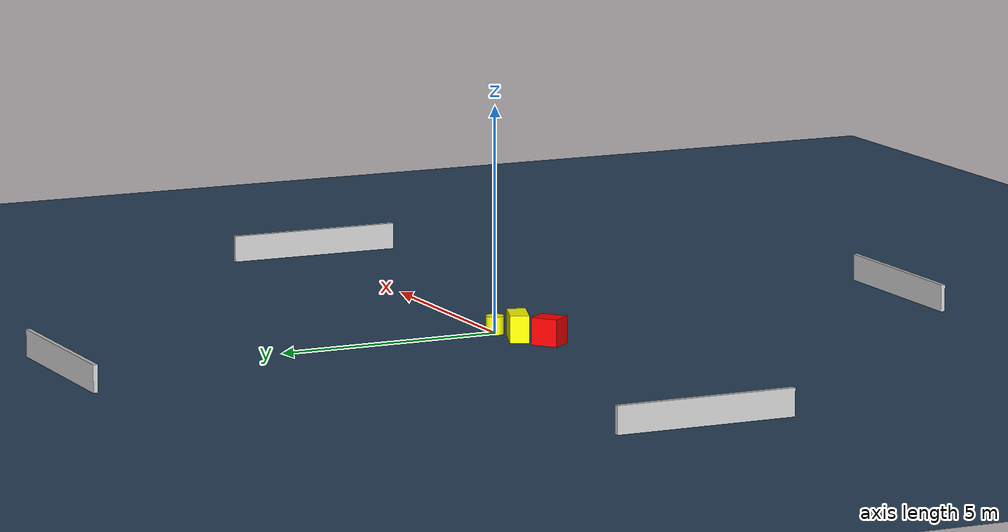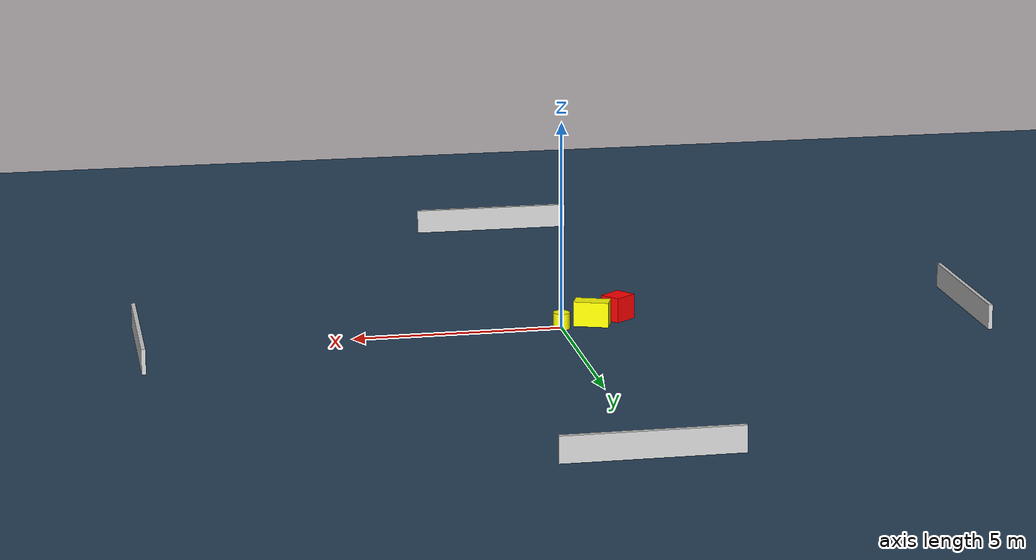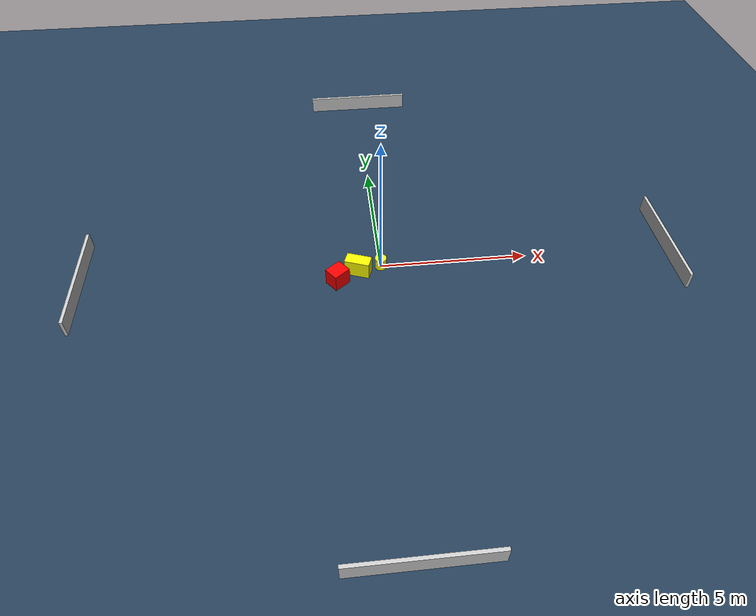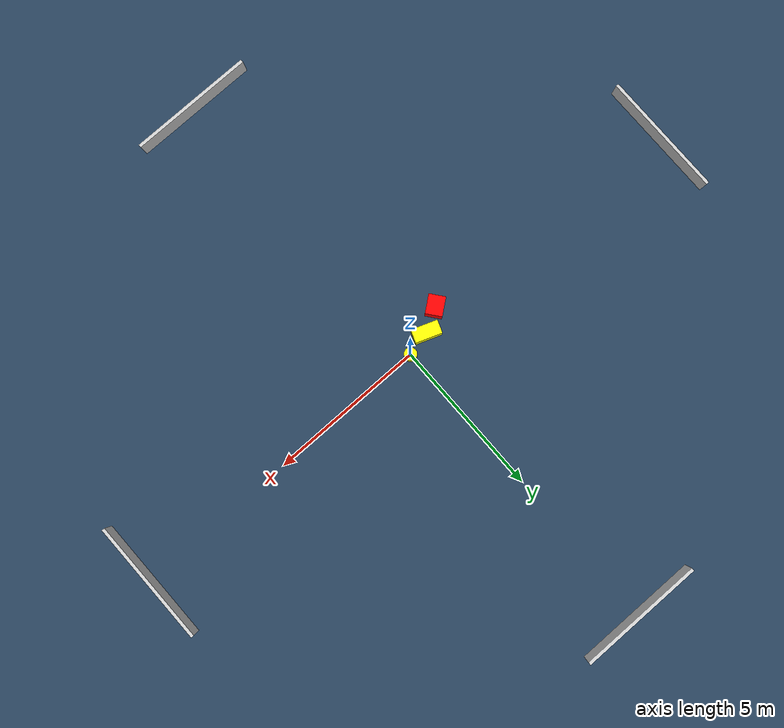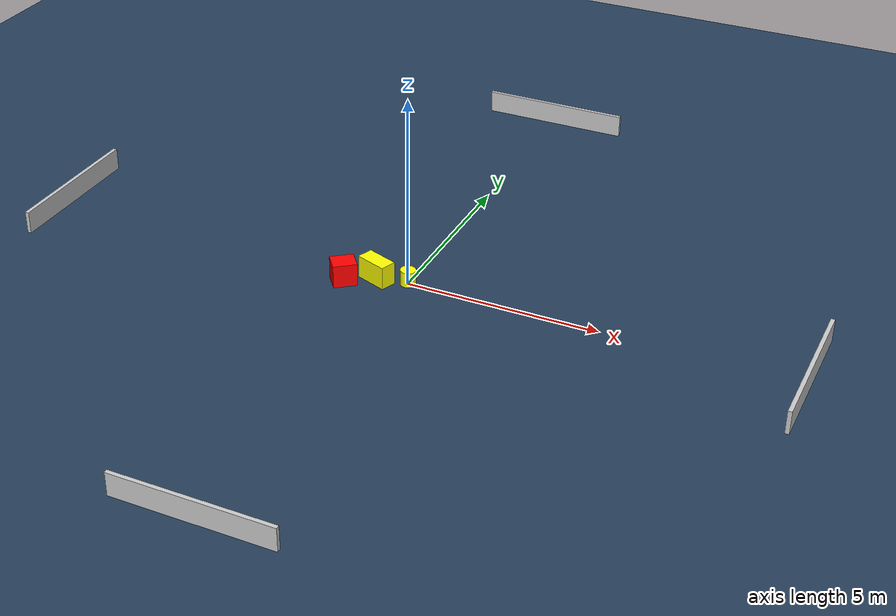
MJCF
<?xml version="1.0" ?>
<mujoco model="generated_environment">
  <option timestep="0.01" integrator="RK4" cone="elliptic"/>
  <default>
    <geom density="1"/>
  </default>
  <asset>
    <texture builtin="gradient" height="3072" name="skybox" rgb1="0.3 0.5 0.7" rgb2="0 0 0" type="skybox" width="512"/>
    <texture builtin="checker" height="300" name="groundplane" rgb1="0.2 0.3 0.4" rgb2="0.1 0.2 0.3" type="2d" width="300"/>
    <material name="groundplane" reflectance="0.2" texrepeat="5 5" texture="groundplane"/>
  </asset>
  <worldbody>
    <light dir="0 0 -1" directional="true" pos="0 0 1.5"/>
    <geom condim="3" friction="0.5 0.005 0.001" material="groundplane" name="floor" pos="0 0 0" size="0 0 0.05" type="plane"/>
    <body name="walls">
      <geom name="wall_1" condim="4" pos="-10.0 0.0 0.3" rgba="0.800000011920929 0.800000011920929 0.800000011920929 1.0" size="0.05 2.0 0.3" type="box"/>
      <geom name="wall_2" condim="4" pos="10.0 0.0 0.3" rgba="0.800000011920929 0.800000011920929 0.800000011920929 1.0" size="0.05 2.0 0.3" type="box"/>
      <geom name="wall_3" condim="4" pos="0.0 -10.0 0.3" rgba="0.800000011920929 0.800000011920929 0.800000011920929 1.0" size="2.0 0.05 0.3" type="box"/>
      <geom name="wall_4" condim="4" pos="0.0 10.0 0.3" rgba="0.800000011920929 0.800000011920929 0.800000011920929 1.0" size="2.0 0.05 0.3" type="box"/>
    </body>
    <body name="robot">
      <joint name="joint_x" type="slide" pos="0 0 0" axis="1 0 0"/>
      <joint name="joint_y" type="slide" pos="0 0 0" axis="0 1 0"/>
      <geom name="robot" type="cylinder" pos="0.0 0.0 0.2" size="0.2 0.2 0.0" mass="5.0" friction="1.0 0.005 0.0001" condim="4" rgba="1.0 1.0 0.0 1.0"/>
    </body>
    <body name="obstacle_1_movable">
      <geom name="obstacle_1_movable" condim="4" pos="-0.7790287489805757 -0.1818501658760723 0.3" euler="0 0 339.8935089952513" friction="0.0 0.005 0.001" rgba="1.0 1.0 0.0 1.0" size="0.4226217067230884 0.2099419331051448 0.3" type="box" mass="0.1"/>
      <joint type="free"/>
    </body>
    <body name="obstacle_2_static">
      <geom name="obstacle_2_static" condim="4" pos="-1.4909016089831773 -0.592149670786316 0.3" euler="0 0 127.93747703435147" friction="0.0 0.005 0.001" rgba="1.0 0.0 0.0 1.0" size="0.2606660150417766 0.30344093931293203 0.3" type="box"/>
    </body>
  </worldbody>
  <actuator>
    <motor name="actuator_x" joint="joint_x" gear="1" ctrlrange="-1 1"/>
    <motor name="actuator_y" joint="joint_y" gear="1" ctrlrange="-1 1"/>
  </actuator>
</mujoco>
